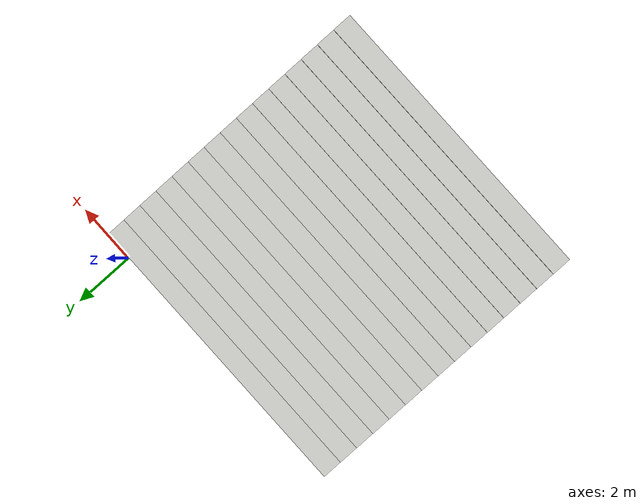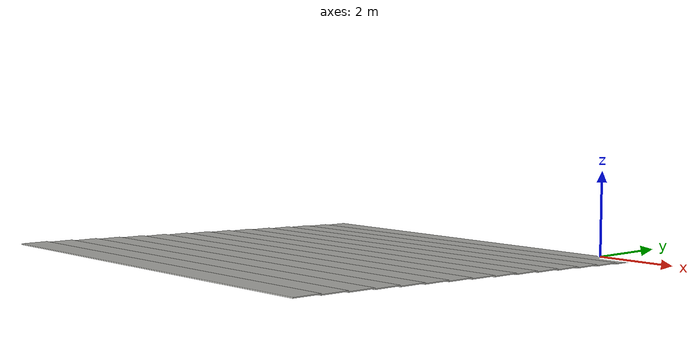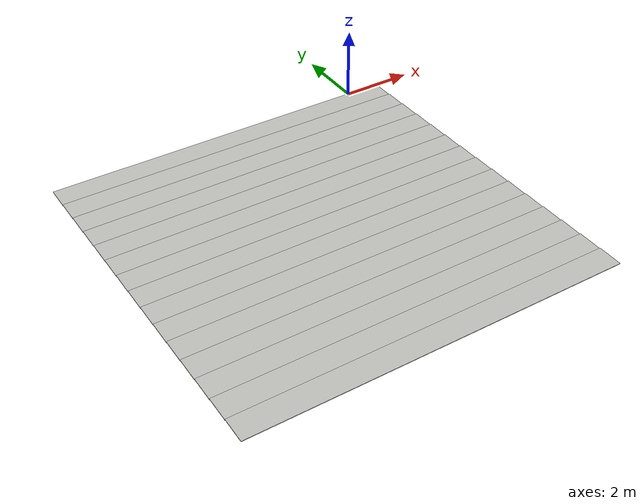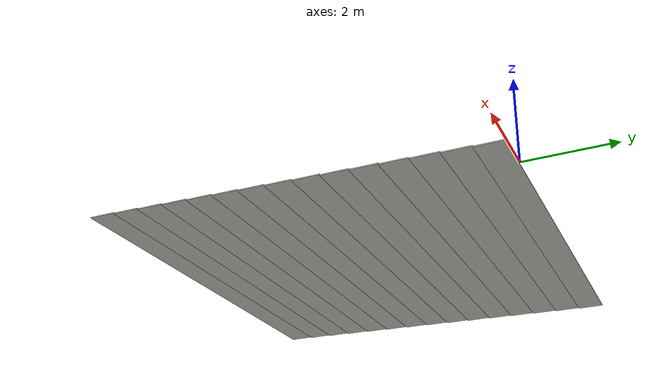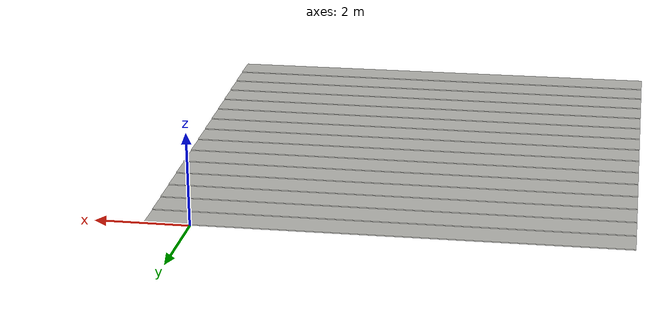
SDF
<?xml version='1.0'?>
<sdf version='1.7'>
  <model name='xiepo.world'>
    <pose>-4.03 -5.01 0 0 -0 0</pose>
    <link name='Stairs_0'>
      <visual name='Stairs_0_Visual_0'>
        <pose>0 4.65667 0.01 0 -0 0</pose>
        <geometry>
          <box>
            <size>10 0.666667 0.02</size>
          </box>
        </geometry>
        <material>
          <script>
            <uri>file://media/materials/scripts/gazebo.material</uri>
            <name>Gazebo/CeilingTiled</name>
          </script>
          <ambient>0.996078 0.47451 0.0196078 1</ambient>
        </material>
        <meta>
          <layer>0</layer>
        </meta>
      </visual>
      <collision name='Stairs_0_Collision_0'>
        <geometry>
          <box>
            <size>10 0.666667 0.02</size>
          </box>
        </geometry>
        <pose>0 4.65667 0.01 0 -0 0</pose>
      </collision>
      <visual name='Stairs_0_Visual_1'>
        <pose>0 3.99 0.03 0 -0 0</pose>
        <geometry>
          <box>
            <size>10 0.666667 0.02</size>
          </box>
        </geometry>
        <material>
          <script>
            <uri>file://media/materials/scripts/gazebo.material</uri>
            <name>Gazebo/CeilingTiled</name>
          </script>
          <ambient>0.996078 0.47451 0.0196078 1</ambient>
        </material>
        <meta>
          <layer>0</layer>
        </meta>
      </visual>
      <collision name='Stairs_0_Collision_1'>
        <geometry>
          <box>
            <size>10 0.666667 0.02</size>
          </box>
        </geometry>
        <pose>0 3.99 0.03 0 -0 0</pose>
      </collision>
      <visual name='Stairs_0_Visual_2'>
        <pose>0 3.32333 0.05 0 -0 0</pose>
        <geometry>
          <box>
            <size>10 0.666667 0.02</size>
          </box>
        </geometry>
        <material>
          <script>
            <uri>file://media/materials/scripts/gazebo.material</uri>
            <name>Gazebo/CeilingTiled</name>
          </script>
          <ambient>0.996078 0.47451 0.0196078 1</ambient>
        </material>
        <meta>
          <layer>0</layer>
        </meta>
      </visual>
      <collision name='Stairs_0_Collision_2'>
        <geometry>
          <box>
            <size>10 0.666667 0.02</size>
          </box>
        </geometry>
        <pose>0 3.32333 0.05 0 -0 0</pose>
      </collision>
      <visual name='Stairs_0_Visual_3'>
        <pose>0 2.65667 0.07 0 -0 0</pose>
        <geometry>
          <box>
            <size>10 0.666667 0.02</size>
          </box>
        </geometry>
        <material>
          <script>
            <uri>file://media/materials/scripts/gazebo.material</uri>
            <name>Gazebo/CeilingTiled</name>
          </script>
          <ambient>0.996078 0.47451 0.0196078 1</ambient>
        </material>
        <meta>
          <layer>0</layer>
        </meta>
      </visual>
      <collision name='Stairs_0_Collision_3'>
        <geometry>
          <box>
            <size>10 0.666667 0.02</size>
          </box>
        </geometry>
        <pose>0 2.65667 0.07 0 -0 0</pose>
      </collision>
      <visual name='Stairs_0_Visual_4'>
        <pose>0 1.99 0.09 0 -0 0</pose>
        <geometry>
          <box>
            <size>10 0.666667 0.02</size>
          </box>
        </geometry>
        <material>
          <script>
            <uri>file://media/materials/scripts/gazebo.material</uri>
            <name>Gazebo/CeilingTiled</name>
          </script>
          <ambient>0.996078 0.47451 0.0196078 1</ambient>
        </material>
        <meta>
          <layer>0</layer>
        </meta>
      </visual>
      <collision name='Stairs_0_Collision_4'>
        <geometry>
          <box>
            <size>10 0.666667 0.02</size>
          </box>
        </geometry>
        <pose>0 1.99 0.09 0 -0 0</pose>
      </collision>
      <visual name='Stairs_0_Visual_5'>
        <pose>0 1.32333 0.11 0 -0 0</pose>
        <geometry>
          <box>
            <size>10 0.666667 0.02</size>
          </box>
        </geometry>
        <material>
          <script>
            <uri>file://media/materials/scripts/gazebo.material</uri>
            <name>Gazebo/CeilingTiled</name>
          </script>
          <ambient>0.996078 0.47451 0.0196078 1</ambient>
        </material>
        <meta>
          <layer>0</layer>
        </meta>
      </visual>
      <collision name='Stairs_0_Collision_5'>
        <geometry>
          <box>
            <size>10 0.666667 0.02</size>
          </box>
        </geometry>
        <pose>0 1.32333 0.11 0 -0 0</pose>
      </collision>
      <visual name='Stairs_0_Visual_6'>
        <pose>0 0.656666 0.13 0 -0 0</pose>
        <geometry>
          <box>
            <size>10 0.666667 0.02</size>
          </box>
        </geometry>
        <material>
          <script>
            <uri>file://media/materials/scripts/gazebo.material</uri>
            <name>Gazebo/CeilingTiled</name>
          </script>
          <ambient>0.996078 0.47451 0.0196078 1</ambient>
        </material>
        <meta>
          <layer>0</layer>
        </meta>
      </visual>
      <collision name='Stairs_0_Collision_6'>
        <geometry>
          <box>
            <size>10 0.666667 0.02</size>
          </box>
        </geometry>
        <pose>0 0.656666 0.13 0 -0 0</pose>
      </collision>
      <visual name='Stairs_0_Visual_7'>
        <pose>0 -0.01 0.15 0 -0 0</pose>
        <geometry>
          <box>
            <size>10 0.666667 0.02</size>
          </box>
        </geometry>
        <material>
          <script>
            <uri>file://media/materials/scripts/gazebo.material</uri>
            <name>Gazebo/CeilingTiled</name>
          </script>
          <ambient>0.996078 0.47451 0.0196078 1</ambient>
        </material>
        <meta>
          <layer>0</layer>
        </meta>
      </visual>
      <collision name='Stairs_0_Collision_7'>
        <geometry>
          <box>
            <size>10 0.666667 0.02</size>
          </box>
        </geometry>
        <pose>0 -0.01 0.15 0 -0 0</pose>
      </collision>
      <visual name='Stairs_0_Visual_8'>
        <pose>0 -0.676667 0.17 0 -0 0</pose>
        <geometry>
          <box>
            <size>10 0.666667 0.02</size>
          </box>
        </geometry>
        <material>
          <script>
            <uri>file://media/materials/scripts/gazebo.material</uri>
            <name>Gazebo/CeilingTiled</name>
          </script>
          <ambient>0.996078 0.47451 0.0196078 1</ambient>
        </material>
        <meta>
          <layer>0</layer>
        </meta>
      </visual>
      <collision name='Stairs_0_Collision_8'>
        <geometry>
          <box>
            <size>10 0.666667 0.02</size>
          </box>
        </geometry>
        <pose>0 -0.676667 0.17 0 -0 0</pose>
      </collision>
      <visual name='Stairs_0_Visual_9'>
        <pose>0 -1.34333 0.19 0 -0 0</pose>
        <geometry>
          <box>
            <size>10 0.666667 0.02</size>
          </box>
        </geometry>
        <material>
          <script>
            <uri>file://media/materials/scripts/gazebo.material</uri>
            <name>Gazebo/CeilingTiled</name>
          </script>
          <ambient>0.996078 0.47451 0.0196078 1</ambient>
        </material>
        <meta>
          <layer>0</layer>
        </meta>
      </visual>
      <collision name='Stairs_0_Collision_9'>
        <geometry>
          <box>
            <size>10 0.666667 0.02</size>
          </box>
        </geometry>
        <pose>0 -1.34333 0.19 0 -0 0</pose>
      </collision>
      <visual name='Stairs_0_Visual_10'>
        <pose>0 -2.01 0.21 0 -0 0</pose>
        <geometry>
          <box>
            <size>10 0.666667 0.02</size>
          </box>
        </geometry>
        <material>
          <script>
            <uri>file://media/materials/scripts/gazebo.material</uri>
            <name>Gazebo/CeilingTiled</name>
          </script>
          <ambient>0.996078 0.47451 0.0196078 1</ambient>
        </material>
        <meta>
          <layer>0</layer>
        </meta>
      </visual>
      <collision name='Stairs_0_Collision_10'>
        <geometry>
          <box>
            <size>10 0.666667 0.02</size>
          </box>
        </geometry>
        <pose>0 -2.01 0.21 0 -0 0</pose>
      </collision>
      <visual name='Stairs_0_Visual_11'>
        <pose>0 -2.67667 0.23 0 -0 0</pose>
        <geometry>
          <box>
            <size>10 0.666667 0.02</size>
          </box>
        </geometry>
        <material>
          <script>
            <uri>file://media/materials/scripts/gazebo.material</uri>
            <name>Gazebo/CeilingTiled</name>
          </script>
          <ambient>0.996078 0.47451 0.0196078 1</ambient>
        </material>
        <meta>
          <layer>0</layer>
        </meta>
      </visual>
      <collision name='Stairs_0_Collision_11'>
        <geometry>
          <box>
            <size>10 0.666667 0.02</size>
          </box>
        </geometry>
        <pose>0 -2.67667 0.23 0 -0 0</pose>
      </collision>
      <visual name='Stairs_0_Visual_12'>
        <pose>0 -3.34333 0.25 0 -0 0</pose>
        <geometry>
          <box>
            <size>10 0.666667 0.02</size>
          </box>
        </geometry>
        <material>
          <script>
            <uri>file://media/materials/scripts/gazebo.material</uri>
            <name>Gazebo/CeilingTiled</name>
          </script>
          <ambient>0.996078 0.47451 0.0196078 1</ambient>
        </material>
        <meta>
          <layer>0</layer>
        </meta>
      </visual>
      <collision name='Stairs_0_Collision_12'>
        <geometry>
          <box>
            <size>10 0.666667 0.02</size>
          </box>
        </geometry>
        <pose>0 -3.34333 0.25 0 -0 0</pose>
      </collision>
      <visual name='Stairs_0_Visual_13'>
        <pose>0 -4.01 0.27 0 -0 0</pose>
        <geometry>
          <box>
            <size>10 0.666667 0.02</size>
          </box>
        </geometry>
        <material>
          <script>
            <uri>file://media/materials/scripts/gazebo.material</uri>
            <name>Gazebo/CeilingTiled</name>
          </script>
          <ambient>0.996078 0.47451 0.0196078 1</ambient>
        </material>
        <meta>
          <layer>0</layer>
        </meta>
      </visual>
      <collision name='Stairs_0_Collision_13'>
        <geometry>
          <box>
            <size>10 0.666667 0.02</size>
          </box>
        </geometry>
        <pose>0 -4.01 0.27 0 -0 0</pose>
      </collision>
      <visual name='Stairs_0_Visual_14'>
        <pose>0 -4.67667 0.29 0 -0 0</pose>
        <geometry>
          <box>
            <size>10 0.666667 0.02</size>
          </box>
        </geometry>
        <material>
          <script>
            <uri>file://media/materials/scripts/gazebo.material</uri>
            <name>Gazebo/CeilingTiled</name>
          </script>
          <ambient>0.996078 0.47451 0.0196078 1</ambient>
        </material>
        <meta>
          <layer>0</layer>
        </meta>
      </visual>
      <collision name='Stairs_0_Collision_14'>
        <geometry>
          <box>
            <size>10 0.666667 0.02</size>
          </box>
        </geometry>
        <pose>0 -4.67667 0.29 0 -0 0</pose>
      </collision>
    </link>
    <static>1</static>
  </model>
</sdf>
